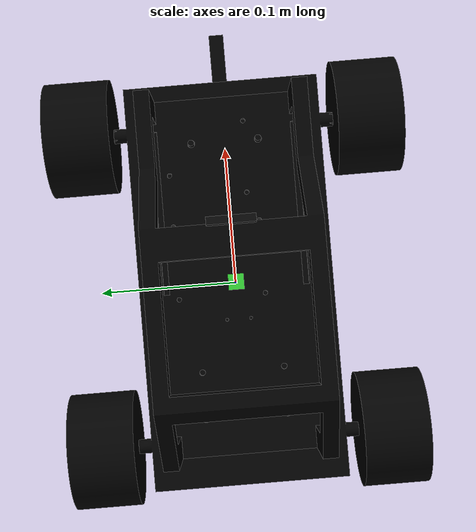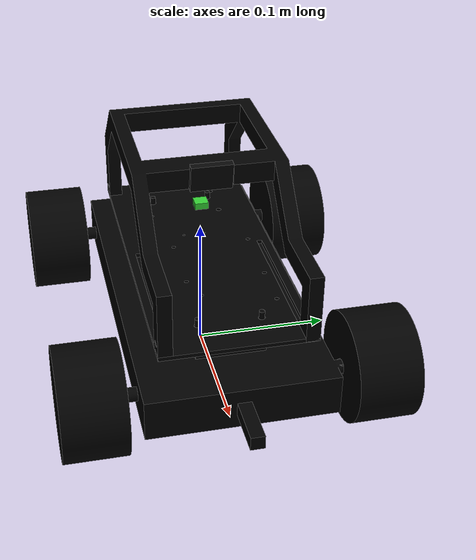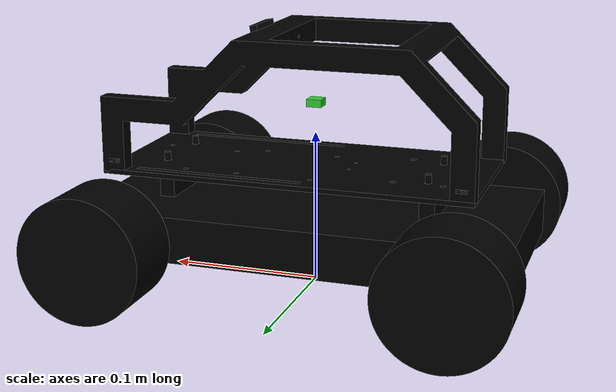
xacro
<?xml version="1.0"?>
<?xml-model href="http://download.ros.org/schema/package_format3.xsd" schematypens="http://www.w3.org/2001/XMLSchema"?>
<robot xmlns:xacro="http://www.ros.org/wiki/xacro" name="rc">

    <!-- ================================================================
         Xacro Arguments
         ================================================================ -->
    <xacro:arg name="use_ros2_control" default="false"/>
    <xacro:arg name="controllers_file" default=""/>

    <!-- ================================================================
         Xacro Properties - Measured Car Geometry
         ================================================================ -->
    <xacro:property name="wheelbase"             value="0.220"/>
    <xacro:property name="track_width"           value="0.155"/>
    <xacro:property name="wheel_radius"          value="0.040"/>
    <xacro:property name="wheel_width_offset"    value="0.0225"/>
    <xacro:property name="wheel_width"           value="${2 * wheel_width_offset}"/>
    <xacro:property name="total_mass"            value="2.5"/>
    <!-- base_link_z = wheel_radius: wheel centers sit one radius above ground
         when base_footprint is at z=0, so wheel collision cylinders touch ground. -->
    <xacro:property name="base_link_z"           value="${wheel_radius}"/>
    <xacro:property name="mesh_scale"            value="0.001 0.001 0.001"/>
    <xacro:property name="visual_yaw_correction" value="${pi}"/>

    <!-- Collision geometry dimensions (simple primitives, not STL meshes) -->
    <xacro:property name="base_collision_length"           value="0.28"/>
    <xacro:property name="base_collision_width"             value="0.11"/>
    <xacro:property name="base_collision_height"            value="0.035"/>
    <xacro:property name="control_layer_collision_length"   value="0.16"/>
    <xacro:property name="control_layer_collision_width"    value="0.08"/>
    <xacro:property name="control_layer_collision_height"   value="0.02"/>
    <xacro:property name="cage_collision_length"             value="0.16"/>
    <xacro:property name="cage_collision_width"              value="0.10"/>
    <xacro:property name="cage_collision_height"             value="0.08"/>
    <xacro:property name="steering_link_collision_size"     value="0.025"/>

    <!-- Mass distribution (sums to 2.5 kg) -->
    <xacro:property name="mass_base_link"               value="1.799"/>
    <xacro:property name="mass_cage_link"                value="0.20"/>
    <xacro:property name="mass_control_layer_link"      value="0.10"/>
    <xacro:property name="mass_steering_link"           value="0.02"/>
    <xacro:property name="mass_wheel_link"              value="0.09"/>
    <xacro:property name="mass_imu_link"                value="0.001"/>

    <!-- Visual material used for the visible car body in RViz and Gazebo. -->
    <material name="car_black">
        <color rgba="0.0 0.0 0.0 1.0"/>
    </material>

    <xacro:macro name="box_inertial" params="mass x y z">
        <inertial>
            <mass value="${mass}"/>
            <origin xyz="0 0 0" rpy="0 0 0"/>
            <inertia ixx="${(1/12)*mass*(y*y + z*z)}"
                     ixy="0" ixz="0"
                     iyy="${(1/12)*mass*(x*x + z*z)}"
                     iyz="0"
                     izz="${(1/12)*mass*(x*x + y*y)}"/>
        </inertial>
    </xacro:macro>

    <!-- Cylinder with axis along Y (wheel rolling axis).
         URDF cylinder axis is Z; rpy="${pi/2} 0 0" rotates Z->Y. -->
    <xacro:macro name="cylinder_inertial_y" params="mass radius length">
        <inertial>
            <mass value="${mass}"/>
            <origin xyz="0 0 0" rpy="${pi/2} 0 0"/>
            <inertia ixx="${(1/12)*mass*(3*radius*radius + length*length)}"
                     ixy="0" ixz="0"
                     iyy="${0.5*mass*radius*radius}"
                     iyz="0"
                     izz="${(1/12)*mass*(3*radius*radius + length*length)}"/>
        </inertial>
    </xacro:macro>

    <xacro:macro name="front_steering_assembly" params="side x_pos y_pos visual_y_offset">
        <link name="front_${side}_steering_link">
            <!-- Phase 1 debug visual: tiny cylinder along Z to mark steering pivot -->
            <visual>
                <origin rpy="0 0 0" xyz="0 0 0"/>
                <geometry>
                    <cylinder length="0.008" radius="0.004"/>
                </geometry>
                <material name="car_black"/>
            </visual>
            <!-- Phase 2 collision: small box centered at steering pivot -->
            <collision>
                <origin rpy="0 0 0" xyz="0 0 0"/>
                <geometry>
                    <box size="${steering_link_collision_size} ${steering_link_collision_size} ${steering_link_collision_size}"/>
                </geometry>
            </collision>
            <!-- Phase 2 inertial -->
            <xacro:box_inertial mass="${mass_steering_link}"
                                x="${steering_link_collision_size}"
                                y="${steering_link_collision_size}"
                                z="${steering_link_collision_size}"/>
        </link>

        <gazebo reference="front_${side}_steering_link">
            <material>Gazebo/Black</material>
        </gazebo>

        <!-- Steering joint: revolute around Z = wheel steering angle -->
        <joint name="front_${side}_steering_joint" type="revolute">
            <parent link="base_link"/>
            <child link="front_${side}_steering_link"/>
            <axis xyz="0 0 1"/>
            <limit lower="-0.6" upper="0.6" effort="10" velocity="3.0"/>
            <origin rpy="0 0 0" xyz="${x_pos} ${y_pos} 0"/>
        </joint>

        <!-- Wheel link: child of steering_link, carries the wheel mesh -->
        <link name="front_${side}_wheel_link">
            <visual>
                <origin rpy="0 0 ${visual_yaw_correction}"
                        xyz="0 ${visual_y_offset} 0"/>
                <geometry>
                    <mesh filename="package://rc_description/meshes/wheel_front_${side}.stl"
                          scale="${mesh_scale}"/>
                </geometry>
                <material name="car_black"/>
            </visual>
            <!-- Phase 2 collision: cylinder along Y axis (wheel rolling) -->
            <collision>
                <origin rpy="${pi/2} 0 0" xyz="0 0 0"/>
                <geometry>
                    <cylinder radius="${wheel_radius}" length="${wheel_width}"/>
                </geometry>
            </collision>
            <!-- Phase 2 inertial -->
            <xacro:cylinder_inertial_y mass="${mass_wheel_link}"
                                       radius="${wheel_radius}"
                                       length="${wheel_width}"/>
        </link>

        <gazebo reference="front_${side}_wheel_link">
            <material>Gazebo/Black</material>
        </gazebo>

        <!-- Wheel spin joint: continuous rotation around wheel axle (Y axis) -->
        <joint name="front_${side}_wheel_joint" type="continuous">
            <parent link="front_${side}_steering_link"/>
            <child link="front_${side}_wheel_link"/>
            <axis xyz="0 1 0"/>
            <origin rpy="0 0 0" xyz="0 0 0"/>
        </joint>
    </xacro:macro>

    <xacro:macro name="rear_wheel_assembly" params="side x_pos y_pos visual_y_offset">
        <link name="rear_${side}_wheel_link">
            <visual>
                <origin rpy="0 0 ${visual_yaw_correction}"
                        xyz="0 ${visual_y_offset} 0"/>
                <geometry>
                    <mesh filename="package://rc_description/meshes/wheel_rear_${side}.stl"
                          scale="${mesh_scale}"/>
                </geometry>
                <material name="car_black"/>
            </visual>
            <!-- Phase 2 collision: cylinder along Y axis (wheel rolling) -->
            <collision>
                <origin rpy="${pi/2} 0 0" xyz="0 0 0"/>
                <geometry>
                    <cylinder radius="${wheel_radius}" length="${wheel_width}"/>
                </geometry>
            </collision>
            <!-- Phase 2 inertial -->
            <xacro:cylinder_inertial_y mass="${mass_wheel_link}"
                                       radius="${wheel_radius}"
                                       length="${wheel_width}"/>
        </link>

        <gazebo reference="rear_${side}_wheel_link">
            <material>Gazebo/Black</material>
        </gazebo>

        <joint name="rear_${side}_wheel_joint" type="continuous">
            <parent link="base_link"/>
            <child link="rear_${side}_wheel_link"/>
            <axis xyz="0 1 0"/>
            <origin rpy="0 0 0" xyz="${x_pos} ${y_pos} 0"/>
        </joint>
    </xacro:macro>

    <!-- ================================================================
         Base Links
         ================================================================ -->
    <link name="base_footprint"/>

    <link name="base_link">
        <visual>
            <origin rpy="0 0 ${visual_yaw_correction}" xyz="0 0 0"/>
            <geometry>
                <mesh filename="package://rc_description/meshes/chassis.stl"
                      scale="${mesh_scale}"/>
            </geometry>
            <material name="car_black"/>
        </visual>
        <!-- Phase 2 collision: lower chassis/body box -->
        <collision>
            <origin xyz="0 0 ${base_collision_height/2}" rpy="0 0 0"/>
            <geometry>
                <box size="${base_collision_length} ${base_collision_width} ${base_collision_height}"/>
            </geometry>
        </collision>
        <!-- Phase 2 inertial -->
        <xacro:box_inertial mass="${mass_base_link}"
                            x="${base_collision_length}"
                            y="${base_collision_width}"
                            z="${base_collision_height}"/>
    </link>

    <gazebo reference="base_link">
        <material>Gazebo/Black</material>
    </gazebo>

    <!-- Fixed joint: base_footprint -> base_link -->
    <joint name="base_joint" type="fixed">
        <parent link="base_footprint"/>
        <child link="base_link"/>
        <origin rpy="0 0 0" xyz="0 0 ${base_link_z}"/>
    </joint>

    <!-- ================================================================
         Chassis / Body Fixed Links
         ================================================================ -->
    <link name="control_layer_link">
        <visual>
            <origin rpy="0 0 ${visual_yaw_correction}" xyz="0 0 0"/>
            <geometry>
                <mesh filename="package://rc_description/meshes/base.stl"
                      scale="${mesh_scale}"/>
            </geometry>
            <material name="car_black"/>
        </visual>
        <!-- Phase 2 collision: electronics speed controller base plate -->
        <collision>
            <origin xyz="0 0 0" rpy="0 0 0"/>
            <geometry>
                <box size="${control_layer_collision_length} ${control_layer_collision_width} ${control_layer_collision_height}"/>
            </geometry>
        </collision>
        <!-- Phase 2 inertial -->
        <xacro:box_inertial mass="${mass_control_layer_link}"
                            x="${control_layer_collision_length}"
                            y="${control_layer_collision_width}"
                            z="${control_layer_collision_height}"/>
    </link>

    <gazebo reference="control_layer_link">
        <material>Gazebo/Black</material>
    </gazebo>

    <joint name="control_layer_joint" type="fixed">
        <parent link="base_link"/>
        <child link="control_layer_link"/>
        <origin rpy="0 0 0" xyz="0.005 0 0.0365"/>
    </joint>

    <link name="cage_link">
        <visual>
            <origin rpy="0 0 ${visual_yaw_correction}" xyz="0 0 0"/>
            <geometry>
                <mesh filename="package://rc_description/meshes/cage.stl"
                      scale="${mesh_scale}"/>
            </geometry>
            <material name="car_black"/>
        </visual>
        <!-- Phase 2 collision: roll-cage bounding box -->
        <collision>
            <origin xyz="0 0 0" rpy="0 0 0"/>
            <geometry>
                <box size="${cage_collision_length} ${cage_collision_width} ${cage_collision_height}"/>
            </geometry>
        </collision>
        <!-- Phase 2 inertial -->
        <xacro:box_inertial mass="${mass_cage_link}"
                            x="${cage_collision_length}"
                            y="${cage_collision_width}"
                            z="${cage_collision_height}"/>
    </link>

    <gazebo reference="cage_link">
        <material>Gazebo/Black</material>
    </gazebo>

    <joint name="cage_joint" type="fixed">
        <parent link="base_link"/>
        <child link="cage_link"/>
        <origin rpy="0 0 0" xyz="0.125 -0.055 0.0368"/>
    </joint>

    <link name="front_marker_link">
        <visual>
            <origin rpy="0 0 0" xyz="0 0 0"/>
            <geometry>
                <box size="0.05 0.01 0.01"/>
            </geometry>
            <material name="car_black">
                <color rgba="0.0 0.0 0.0 1.0"/>
            </material>
        </visual>
        <!-- Phase 2: no collision, no inertial (debug marker only) -->
    </link>

    <gazebo reference="front_marker_link">
        <material>Gazebo/Black</material>
    </gazebo>

    <joint name="front_marker_joint" type="fixed">
        <parent link="base_link"/>
        <child link="front_marker_link"/>
        <origin rpy="0 0 0" xyz="0.15 0 0"/>
    </joint>

    <!-- Front Left: steering around Z, then wheel spin around Y -->
    <xacro:front_steering_assembly side="left"
                                   x_pos="${wheelbase/2}"
                                   y_pos="${track_width/2}"
                                   visual_y_offset="${wheel_width_offset}"/>

    <!-- Front Right: steering around Z, then wheel spin around Y -->
    <xacro:front_steering_assembly side="right"
                                   x_pos="${wheelbase/2}"
                                   y_pos="${-track_width/2}"
                                   visual_y_offset="${-wheel_width_offset}"/>

    <!-- Rear Left: direct child of base_link, spin around Y -->
    <xacro:rear_wheel_assembly side="left"
                               x_pos="${-wheelbase/2}"
                               y_pos="${track_width/2}"
                               visual_y_offset="${wheel_width_offset}"/>

    <!-- Rear Right: direct child of base_link, spin around Y -->
    <xacro:rear_wheel_assembly side="right"
                               x_pos="${-wheelbase/2}"
                               y_pos="${-track_width/2}"
                               visual_y_offset="${-wheel_width_offset}"/>

    <link name="imu_link">
        <!-- Visual: tiny box as IMU marker -->
        <visual>
            <origin rpy="0 0 0" xyz="0 0 0"/>
            <geometry>
                <box size="0.01 0.01 0.005"/>
            </geometry>
            <material name="green">
                <color rgba="0.2 0.8 0.2 1.0"/>
            </material>
        </visual>
        <!-- No collision -->
        <!-- Tiny inertial: 0.001 kg, negligible inertia -->
        <inertial>
            <mass value="${mass_imu_link}"/>
            <origin xyz="0 0 0" rpy="0 0 0"/>
            <inertia ixx="1e-8" ixy="0" ixz="0" iyy="1e-8" iyz="0" izz="1e-8"/>
        </inertial>
    </link>

    <joint name="imu_joint" type="fixed">
        <parent link="base_link"/>
        <child link="imu_link"/>
        <origin rpy="0 0 0" xyz="0 0 0.08"/>
    </joint>

    <link name="camera_link">
        <visual>
            <origin rpy="0 0 0" xyz="0 0 0"/>
            <geometry>
                <box size="0.005 0.03 0.02"/>
            </geometry>
            <material name="camera_black">
                <color rgba="0.02 0.02 0.02 1.0"/>
            </material>
        </visual>

        <collision>
            <origin rpy="0 0 0" xyz="0 0 0"/>
            <geometry>
                <box size="0.005 0.03 0.02"/>
            </geometry>
        </collision>

        <inertial>
            <mass value="0.02"/>
            <origin xyz="0 0 0" rpy="0 0 0"/>
            <inertia ixx="1e-6" ixy="0" ixz="0" iyy="1e-6" iyz="0" izz="1e-6"/>
        </inertial>
    </link>

    <joint name="camera_joint" type="fixed">
        <parent link="base_link"/>
        <child link="camera_link"/>
        <origin rpy="0 0.1745 0" xyz="0.035 0 0.12"/>
    </joint>

    <!-- ROS optical convention: +Z forward, +X right, +Y down. -->
    <link name="camera_optical_frame"/>
    <joint name="camera_optical_joint" type="fixed">
        <parent link="camera_link"/>
        <child link="camera_optical_frame"/>
        <origin xyz="0 0 0" rpy="${-pi/2} 0 ${-pi/2}"/>
    </joint>

    <gazebo reference="camera_link">
        <sensor name="front_camera" type="camera">
            <always_on>true</always_on>
            <update_rate>30</update_rate>
            <camera>
                <horizontal_fov>2.094</horizontal_fov>
                <image>
                    <width>854</width>
                    <height>480</height>
                    <format>R8G8B8</format>
                </image>
                <clip>
                    <near>0.02</near>
                    <far>50.0</far>
                </clip>
            </camera>
            <plugin name="front_camera_controller" filename="libgazebo_ros_camera.so">
                <ros>
                    <namespace>/camera</namespace>
                    <remapping>image_raw:=image_raw</remapping>
                    <remapping>camera_info:=camera_info</remapping>
                </ros>
                <frame_name>camera_optical_frame</frame_name>
            </plugin>
        </sensor>
    </gazebo>

    <xacro:if value="$(arg use_ros2_control)">
        <ros2_control name="rc_car_hardware" type="system">
            <hardware>
                <plugin>gazebo_ros2_control/GazeboSystem</plugin>
            </hardware>

            <!-- Steering joints: command + state position/velocity -->
            <joint name="front_left_steering_joint">
                <command_interface name="position"/>
                <state_interface name="position"/>
                <state_interface name="velocity"/>
            </joint>
            <joint name="front_right_steering_joint">
                <command_interface name="position"/>
                <state_interface name="position"/>
                <state_interface name="velocity"/>
            </joint>

            <!-- Rear wheel joints: command + state velocity -->
            <joint name="rear_left_wheel_joint">
                <command_interface name="velocity"/>
                <state_interface name="position"/>
                <state_interface name="velocity"/>
            </joint>
            <joint name="rear_right_wheel_joint">
                <command_interface name="velocity"/>
                <state_interface name="position"/>
                <state_interface name="velocity"/>
            </joint>

            <!-- Passive front wheel spin joints: state only -->
            <joint name="front_left_wheel_joint">
                <state_interface name="position"/>
                <state_interface name="velocity"/>
            </joint>
            <joint name="front_right_wheel_joint">
                <state_interface name="position"/>
                <state_interface name="velocity"/>
            </joint>
        </ros2_control>

        <!-- Gazebo Classic ros2_control plugin (activates when use_ros2_control=true) -->
        <gazebo>
            <plugin filename="libgazebo_ros2_control.so" name="gazebo_ros2_control">
                <parameters>$(arg controllers_file)</parameters>
            </plugin>
        </gazebo>
    </xacro:if>

    <gazebo>
        <plugin filename="libgazebo_ros_p3d.so" name="ground_truth_p3d">
            <ros>
                <remapping>odom:=/ground_truth/odom</remapping>
            </ros>
            <frame_name>map</frame_name>
            <body_name>base_footprint</body_name>
            <update_rate>20.0</update_rate>
            <gaussian_noise>0.0</gaussian_noise>
        </plugin>
    </gazebo>

    <gazebo reference="imu_link">
        <sensor name="imu_sensor" type="imu">
            <always_on>true</always_on>
            <update_rate>100</update_rate>
            <pose>0 0 0 0 0 0</pose>
            <imu>
                <noise type="gaussian">
                    <rate>
                        <mean>0.0</mean>
                        <stddev>0.002</stddev>
                    </rate>
                    <accel>
                        <mean>0.0</mean>
                        <stddev>0.02</stddev>
                    </accel>
                </noise>
            </imu>
            <plugin filename="libgazebo_ros_imu_sensor.so" name="imu_sensor_plugin">
                <ros>
                    <namespace>/imu</namespace>
                    <remapping>~/out:=data</remapping>
                </ros>
                <frame_name>imu_link</frame_name>
            </plugin>
        </sensor>
    </gazebo>

</robot>
